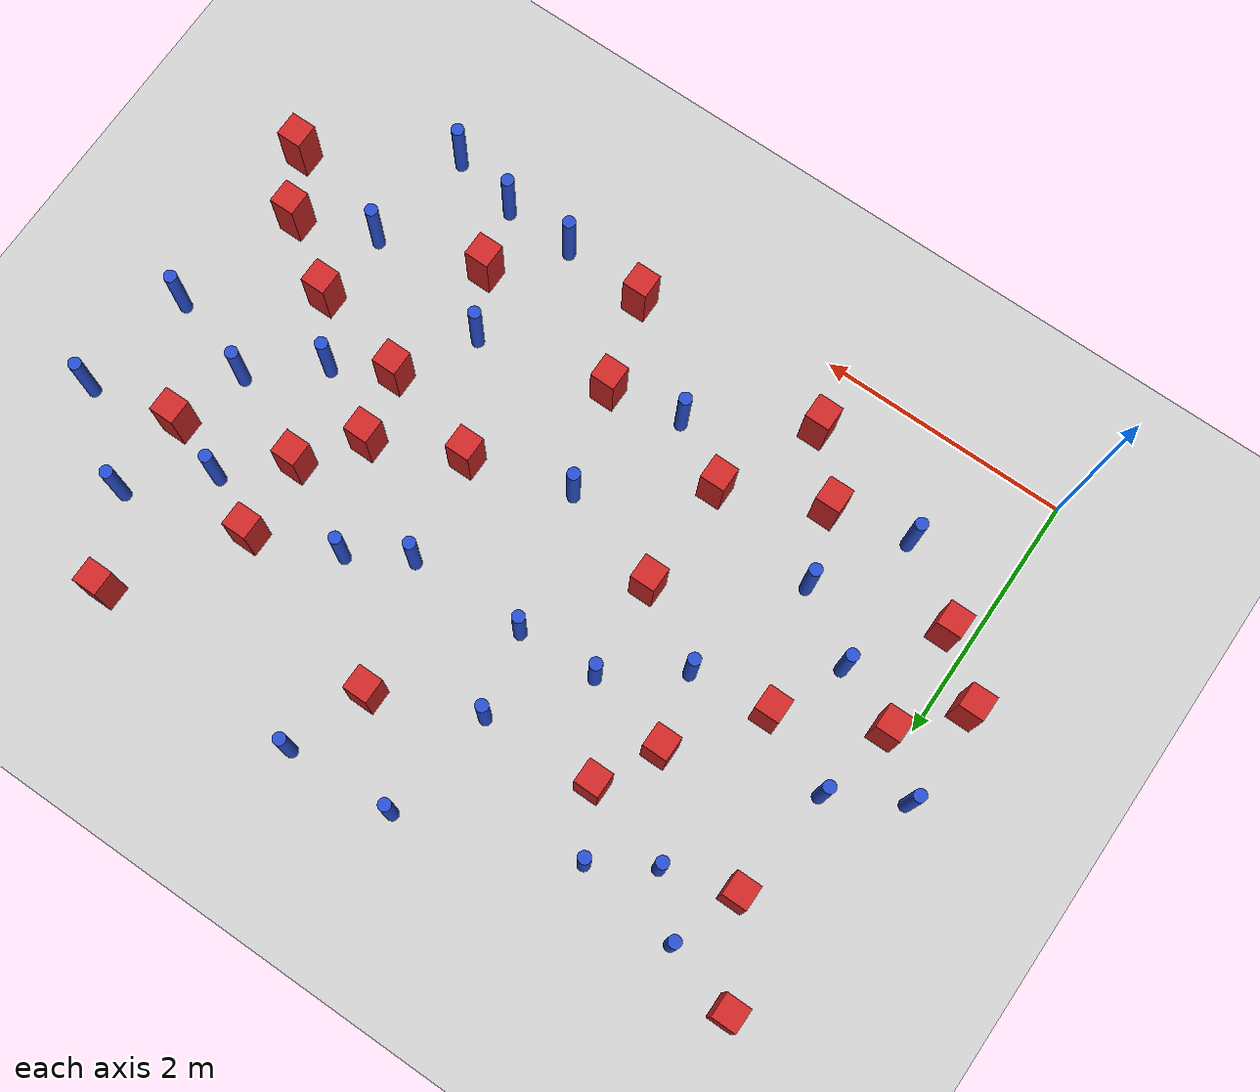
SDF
<sdf version="1.6">
 <world name="default">
  <model name="ground_plane">
   <static>1</static>
   <link name="link">
    <collision name="collision">
     <geometry><plane><normal>0 0 1</normal><size>100 100</size></plane></geometry>
     <surface><friction><ode><mu>100</mu><mu2>50</mu2></ode></friction></surface>
    </collision>
    <visual name="visual">
     <cast_shadows>0</cast_shadows>
     <geometry><plane><normal>0 0 1</normal><size>100 100</size></plane></geometry>
     <material>
      <ambient>1.0 1.0 1.0 1.0</ambient>
      <diffuse>0.8 0.8 0.8 1.0</diffuse>
      <specular>0.01 0.01 0.01 1.000000</specular>
     </material>
    </visual>
   </link>
  </model>
  <model name="pole_obstacle5">
   <static>true</static>
   <pose>0.301049879293 2.78130600048 -3.09024884793e-07 -7.19054271912e-07 -2.11315075129e-07 -1.93935509263e-07</pose>
   <link name="link">
    <pose>0 0 0.3 0 -0 0</pose>
    <inertial>
     <mass>1</mass>
     <inertia><ixx>0.145833</ixx><ixy>0</ixy><ixz>0</ixz><iyy>0.145833</iyy><iyz>0</iyz><izz>0.125</izz></inertia>
    </inertial>
    <collision name="collision">
     <geometry><cylinder><radius>0.05</radius><length>.6</length></cylinder></geometry>
    </collision>
    <visual name="visual">
     <geometry><cylinder><radius>0.05</radius><length>.6</length></cylinder></geometry>
     <material>
      <script><name>Gazebo/Blue</name><uri>file://media/materials/scripts/gazebo.material</uri></script>
     </material>
    </visual>
   </link>
  </model>
  <model name="square_post_obstacle5">
   <static>true</static>
   <pose>3.23649416431 1.14456363567 -4.36207812815e-07 3.75137919937e-06 9.77721102514e-07 2.47381364184e-05</pose>
   <link name="link">
    <pose>0 0 0.25 0 -0 0</pose>
    <inertial>
     <mass>100</mass>
     <inertia>
      <ixx>0.166667</ixx>
      <ixy>0</ixy>
      <ixz>0</ixz>
      <iyy>0.166667</iyy>
      <iyz>0</iyz>
      <izz>0.166667</izz>
     </inertia>
    </inertial>
    <collision name="collision"><geometry><box><size>.2 .2 .5</size></box></geometry></collision>
    <visual name="visual">
     <geometry><box><size>.2 .2 .5</size></box></geometry>
     <material>
      <script><name>Gazebo/Red</name><uri>file://media/materials/scripts/gazebo.material</uri></script>
     </material>
    </visual>
   </link>
  </model>
  <model name="pole_obstacle11">
   <static>true</static>
   <pose>5.72534623806 3.8320057346 -3.09024884793e-07 -7.19054271912e-07 -2.11315075144e-07 -1.93935509269e-07</pose>
   <link name="link">
    <pose>0 0 0.3 0 -0 0</pose>
    <inertial>
     <mass>1</mass>
     <inertia><ixx>0.145833</ixx><ixy>0</ixy><ixz>0</ixz><iyy>0.145833</iyy><iyz>0</iyz><izz>0.125</izz></inertia>
    </inertial>
    <collision name="collision">
     <geometry><cylinder><radius>0.05</radius><length>.6</length></cylinder></geometry>
    </collision>
    <visual name="visual">
     <geometry><cylinder><radius>0.05</radius><length>.6</length></cylinder></geometry>
     <material>
      <script><name>Gazebo/Blue</name><uri>file://media/materials/scripts/gazebo.material</uri></script>
     </material>
    </visual>
   </link>
  </model>
  <model name="square_post_obstacle9">
   <static>true</static>
   <pose>0.162851967666 2.13159668785 -4.36207812815e-07 3.75137919937e-06 9.77721102514e-07 2.47381364184e-05</pose>
   <link name="link">
    <pose>0 0 0.25 0 -0 0</pose>
    <inertial>
     <mass>100</mass>
     <inertia>
      <ixx>0.166667</ixx>
      <ixy>0</ixy>
      <ixz>0</ixz>
      <iyy>0.166667</iyy>
      <iyz>0</iyz>
      <izz>0.166667</izz>
     </inertia>
    </inertial>
    <collision name="collision"><geometry><box><size>.2 .2 .5</size></box></geometry></collision>
    <visual name="visual">
     <geometry><box><size>.2 .2 .5</size></box></geometry>
     <material>
      <script><name>Gazebo/Red</name><uri>file://media/materials/scripts/gazebo.material</uri></script>
     </material>
    </visual>
   </link>
  </model>
  <model name="square_post_obstacle11">
   <static>true</static>
   <pose>0.403565331096 3.68767833755 -4.36207812815e-07 3.75137919937e-06 9.77721102514e-07 2.47381364184e-05</pose>
   <link name="link">
    <pose>0 0 0.25 0 -0 0</pose>
    <inertial>
     <mass>100</mass>
     <inertia>
      <ixx>0.166667</ixx>
      <ixy>0</ixy>
      <ixz>0</ixz>
      <iyy>0.166667</iyy>
      <iyz>0</iyz>
      <izz>0.166667</izz>
     </inertia>
    </inertial>
    <collision name="collision"><geometry><box><size>.2 .2 .5</size></box></geometry></collision>
    <visual name="visual">
     <geometry><box><size>.2 .2 .5</size></box></geometry>
     <material>
      <script><name>Gazebo/Red</name><uri>file://media/materials/scripts/gazebo.material</uri></script>
     </material>
    </visual>
   </link>
  </model>
  <model name="pole_obstacle14">
   <static>true</static>
   <pose>6.26236813812 2.39795763185 -3.09024884793e-07 -7.19054271912e-07 -2.11315075144e-07 -1.93935509269e-07</pose>
   <link name="link">
    <pose>0 0 0.3 0 -0 0</pose>
    <inertial>
     <mass>1</mass>
     <inertia><ixx>0.145833</ixx><ixy>0</ixy><ixz>0</ixz><iyy>0.145833</iyy><iyz>0</iyz><izz>0.125</izz></inertia>
    </inertial>
    <collision name="collision">
     <geometry><cylinder><radius>0.05</radius><length>.6</length></cylinder></geometry>
    </collision>
    <visual name="visual">
     <geometry><cylinder><radius>0.05</radius><length>.6</length></cylinder></geometry>
     <material>
      <script><name>Gazebo/Blue</name><uri>file://media/materials/scripts/gazebo.material</uri></script>
     </material>
    </visual>
   </link>
  </model>
  <model name="square_post_obstacle14">
   <static>true</static>
   <pose>4.79167784545 2.927379257 -4.36207812815e-07 3.75137919937e-06 9.77721102514e-07 2.47381364184e-05</pose>
   <link name="link">
    <pose>0 0 0.25 0 -0 0</pose>
    <inertial>
     <mass>100</mass>
     <inertia>
      <ixx>0.166667</ixx>
      <ixy>0</ixy>
      <ixz>0</ixz>
      <iyy>0.166667</iyy>
      <iyz>0</iyz>
      <izz>0.166667</izz>
     </inertia>
    </inertial>
    <collision name="collision"><geometry><box><size>.2 .2 .5</size></box></geometry></collision>
    <visual name="visual">
     <geometry><box><size>.2 .2 .5</size></box></geometry>
     <material>
      <script><name>Gazebo/Red</name><uri>file://media/materials/scripts/gazebo.material</uri></script>
     </material>
    </visual>
   </link>
  </model>
  <model name="square_post_obstacle16">
   <static>true</static>
   <pose>-0.230969809656 1.67679450493 -4.36207812815e-07 3.75137919937e-06 9.77721102514e-07 2.47381364184e-05</pose>
   <link name="link">
    <pose>0 0 0.25 0 -0 0</pose>
    <inertial>
     <mass>100</mass>
     <inertia>
      <ixx>0.166667</ixx>
      <ixy>0</ixy>
      <ixz>0</ixz>
      <iyy>0.166667</iyy>
      <iyz>0</iyz>
      <izz>0.166667</izz>
     </inertia>
    </inertial>
    <collision name="collision"><geometry><box><size>.2 .2 .5</size></box></geometry></collision>
    <visual name="visual">
     <geometry><box><size>.2 .2 .5</size></box></geometry>
     <material>
      <script><name>Gazebo/Red</name><uri>file://media/materials/scripts/gazebo.material</uri></script>
     </material>
    </visual>
   </link>
  </model>
  <model name="square_post_obstacle17">
   <static>true</static>
   <pose>4.75082354821 3.5558905162 -4.36207812815e-07 3.75137919937e-06 9.77721102514e-07 2.47381364184e-05</pose>
   <link name="link">
    <pose>0 0 0.25 0 -0 0</pose>
    <inertial>
     <mass>100</mass>
     <inertia>
      <ixx>0.166667</ixx>
      <ixy>0</ixy>
      <ixz>0</ixz>
      <iyy>0.166667</iyy>
      <iyz>0</iyz>
      <izz>0.166667</izz>
     </inertia>
    </inertial>
    <collision name="collision"><geometry><box><size>.2 .2 .5</size></box></geometry></collision>
    <visual name="visual">
     <geometry><box><size>.2 .2 .5</size></box></geometry>
     <material>
      <script><name>Gazebo/Red</name><uri>file://media/materials/scripts/gazebo.material</uri></script>
     </material>
    </visual>
   </link>
  </model>
  <model name="pole_obstacle24">
   <static>true</static>
   <pose>2.56532698916 3.67538079114 -3.09024884793e-07 -7.19054271912e-07 -2.11315075144e-07 -1.93935509271e-07</pose>
   <link name="link">
    <pose>0 0 0.3 0 -0 0</pose>
    <inertial>
     <mass>1</mass>
     <inertia><ixx>0.145833</ixx><ixy>0</ixy><ixz>0</ixz><iyy>0.145833</iyy><iyz>0</iyz><izz>0.125</izz></inertia>
    </inertial>
    <collision name="collision">
     <geometry><cylinder><radius>0.05</radius><length>.6</length></cylinder></geometry>
    </collision>
    <visual name="visual">
     <geometry><cylinder><radius>0.05</radius><length>.6</length></cylinder></geometry>
     <material>
      <script><name>Gazebo/Blue</name><uri>file://media/materials/scripts/gazebo.material</uri></script>
     </material>
    </visual>
   </link>
  </model>
  <model name="pole_obstacle27">
   <static>true</static>
   <pose>0.664548261349 1.922897534 -3.09024884793e-07 -7.19054271912e-07 -2.11315075135e-07 -1.93935509266e-07</pose>
   <link name="link">
    <pose>0 0 0.3 0 -0 0</pose>
    <inertial>
     <mass>1</mass>
     <inertia><ixx>0.145833</ixx><ixy>0</ixy><ixz>0</ixz><iyy>0.145833</iyy><iyz>0</iyz><izz>0.125</izz></inertia>
    </inertial>
    <collision name="collision">
     <geometry><cylinder><radius>0.05</radius><length>.6</length></cylinder></geometry>
    </collision>
    <visual name="visual">
     <geometry><cylinder><radius>0.05</radius><length>.6</length></cylinder></geometry>
     <material>
      <script><name>Gazebo/Blue</name><uri>file://media/materials/scripts/gazebo.material</uri></script>
     </material>
    </visual>
   </link>
  </model>
  <model name="square_post_obstacle30">
   <static>true</static>
   <pose>6.25265639507 0.907791862315 -4.36207812815e-07 3.75137919937e-06 9.77721102514e-07 2.47381364184e-05</pose>
   <link name="link">
    <pose>0 0 0.25 0 -0 0</pose>
    <inertial>
     <mass>100</mass>
     <inertia>
      <ixx>0.166667</ixx>
      <ixy>0</ixy>
      <ixz>0</ixz>
      <iyy>0.166667</iyy>
      <iyz>0</iyz>
      <izz>0.166667</izz>
     </inertia>
    </inertial>
    <collision name="collision"><geometry><box><size>.2 .2 .5</size></box></geometry></collision>
    <visual name="visual">
     <geometry><box><size>.2 .2 .5</size></box></geometry>
     <material>
      <script><name>Gazebo/Red</name><uri>file://media/materials/scripts/gazebo.material</uri></script>
     </material>
    </visual>
   </link>
  </model>
  <model name="pole_obstacle39">
   <static>true</static>
   <pose>2.71931551612 3.02243655835 -3.09024884793e-07 -7.19054271912e-07 -2.11315075144e-07 -1.93935509271e-07</pose>
   <link name="link">
    <pose>0 0 0.3 0 -0 0</pose>
    <inertial>
     <mass>1</mass>
     <inertia><ixx>0.145833</ixx><ixy>0</ixy><ixz>0</ixz><iyy>0.145833</iyy><iyz>0</iyz><izz>0.125</izz></inertia>
    </inertial>
    <collision name="collision">
     <geometry><cylinder><radius>0.05</radius><length>.6</length></cylinder></geometry>
    </collision>
    <visual name="visual">
     <geometry><cylinder><radius>0.05</radius><length>.6</length></cylinder></geometry>
     <material>
      <script><name>Gazebo/Blue</name><uri>file://media/materials/scripts/gazebo.material</uri></script>
     </material>
    </visual>
   </link>
  </model>
  <model name="pole_obstacle42">
   <static>true</static>
   <pose>0.948194345929 3.84978508589 -3.09024884793e-07 -7.19054271912e-07 -2.11315075129e-07 -1.93935509263e-07</pose>
   <link name="link">
    <pose>0 0 0.3 0 -0 0</pose>
    <inertial>
     <mass>1</mass>
     <inertia><ixx>0.145833</ixx><ixy>0</ixy><ixz>0</ixz><iyy>0.145833</iyy><iyz>0</iyz><izz>0.125</izz></inertia>
    </inertial>
    <collision name="collision">
     <geometry><cylinder><radius>0.05</radius><length>.6</length></cylinder></geometry>
    </collision>
    <visual name="visual">
     <geometry><cylinder><radius>0.05</radius><length>.6</length></cylinder></geometry>
     <material>
      <script><name>Gazebo/Blue</name><uri>file://media/materials/scripts/gazebo.material</uri></script>
     </material>
    </visual>
   </link>
  </model>
  <model name="pole_obstacle43">
   <static>true</static>
   <pose>5.22394746204 0.251731931537 -3.09024884793e-07 -7.19054271912e-07 -2.11315075135e-07 -1.93935509265e-07</pose>
   <link name="link">
    <pose>0 0 0.3 0 -0 0</pose>
    <inertial>
     <mass>1</mass>
     <inertia><ixx>0.145833</ixx><ixy>0</ixy><ixz>0</ixz><iyy>0.145833</iyy><iyz>0</iyz><izz>0.125</izz></inertia>
    </inertial>
    <collision name="collision">
     <geometry><cylinder><radius>0.05</radius><length>.6</length></cylinder></geometry>
    </collision>
    <visual name="visual">
     <geometry><cylinder><radius>0.05</radius><length>.6</length></cylinder></geometry>
     <material>
      <script><name>Gazebo/Blue</name><uri>file://media/materials/scripts/gazebo.material</uri></script>
     </material>
    </visual>
   </link>
  </model>
  <model name="pole_obstacle44">
   <static>true</static>
   <pose>6.41487378239 3.32239646882 -3.09024884793e-07 -7.19054271912e-07 -2.11315075144e-07 -1.93935509269e-07</pose>
   <link name="link">
    <pose>0 0 0.3 0 -0 0</pose>
    <inertial>
     <mass>1</mass>
     <inertia><ixx>0.145833</ixx><ixy>0</ixy><ixz>0</ixz><iyy>0.145833</iyy><iyz>0</iyz><izz>0.125</izz></inertia>
    </inertial>
    <collision name="collision">
     <geometry><cylinder><radius>0.05</radius><length>.6</length></cylinder></geometry>
    </collision>
    <visual name="visual">
     <geometry><cylinder><radius>0.05</radius><length>.6</length></cylinder></geometry>
     <material>
      <script><name>Gazebo/Blue</name><uri>file://media/materials/scripts/gazebo.material</uri></script>
     </material>
    </visual>
   </link>
  </model>
  <model name="square_post_obstacle45">
   <static>true</static>
   <pose>3.44521033225 0.42264570161 -4.36207812815e-07 3.75137919937e-06 9.77721102514e-07 2.47381364184e-05</pose>
   <link name="link">
    <pose>0 0 0.25 0 -0 0</pose>
    <inertial>
     <mass>100</mass>
     <inertia>
      <ixx>0.166667</ixx>
      <ixy>0</ixy>
      <ixz>0</ixz>
      <iyy>0.166667</iyy>
      <iyz>0</iyz>
      <izz>0.166667</izz>
     </inertia>
    </inertial>
    <collision name="collision"><geometry><box><size>.2 .2 .5</size></box></geometry></collision>
    <visual name="visual">
     <geometry><box><size>.2 .2 .5</size></box></geometry>
     <material>
      <script><name>Gazebo/Red</name><uri>file://media/materials/scripts/gazebo.material</uri></script>
     </material>
    </visual>
   </link>
  </model>
  <model name="square_post_obstacle49">
   <static>true</static>
   <pose>5.70007666373 3.17042374362 -4.36207812815e-07 3.75137919937e-06 9.77721102514e-07 2.47381364184e-05</pose>
   <link name="link">
    <pose>0 0 0.25 0 -0 0</pose>
    <inertial>
     <mass>100</mass>
     <inertia>
      <ixx>0.166667</ixx>
      <ixy>0</ixy>
      <ixz>0</ixz>
      <iyy>0.166667</iyy>
      <iyz>0</iyz>
      <izz>0.166667</izz>
     </inertia>
    </inertial>
    <collision name="collision"><geometry><box><size>.2 .2 .5</size></box></geometry></collision>
    <visual name="visual">
     <geometry><box><size>.2 .2 .5</size></box></geometry>
     <material>
      <script><name>Gazebo/Red</name><uri>file://media/materials/scripts/gazebo.material</uri></script>
     </material>
    </visual>
   </link>
  </model>
  <model name="pole_obstacle65">
   <static>true</static>
   <pose>3.56930839278 4.65306455116 -3.09024884793e-07 -7.19054271912e-07 -2.11315075134e-07 -1.93935509266e-07</pose>
   <link name="link">
    <pose>0 0 0.3 0 -0 0</pose>
    <inertial>
     <mass>1</mass>
     <inertia><ixx>0.145833</ixx><ixy>0</ixy><ixz>0</ixz><iyy>0.145833</iyy><iyz>0</iyz><izz>0.125</izz></inertia>
    </inertial>
    <collision name="collision">
     <geometry><cylinder><radius>0.05</radius><length>.6</length></cylinder></geometry>
    </collision>
    <visual name="visual">
     <geometry><cylinder><radius>0.05</radius><length>.6</length></cylinder></geometry>
     <material>
      <script><name>Gazebo/Blue</name><uri>file://media/materials/scripts/gazebo.material</uri></script>
     </material>
    </visual>
   </link>
  </model>
  <model name="pole_obstacle70">
   <static>true</static>
   <pose>0.588663231134 4.23512099485 -3.09024884793e-07 -7.19054271912e-07 -2.11315075129e-07 -1.93935509261e-07</pose>
   <link name="link">
    <pose>0 0 0.3 0 -0 0</pose>
    <inertial>
     <mass>1</mass>
     <inertia><ixx>0.145833</ixx><ixy>0</ixy><ixz>0</ixz><iyy>0.145833</iyy><iyz>0</iyz><izz>0.125</izz></inertia>
    </inertial>
    <collision name="collision">
     <geometry><cylinder><radius>0.05</radius><length>.6</length></cylinder></geometry>
    </collision>
    <visual name="visual">
     <geometry><cylinder><radius>0.05</radius><length>.6</length></cylinder></geometry>
     <material>
      <script><name>Gazebo/Blue</name><uri>file://media/materials/scripts/gazebo.material</uri></script>
     </material>
    </visual>
   </link>
  </model>
  <model name="pole_obstacle74">
   <static>true</static>
   <pose>4.27987267948 1.36129176098 -3.09024884793e-07 -7.19054271912e-07 -2.11315075124e-07 -1.93935509261e-07</pose>
   <link name="link">
    <pose>0 0 0.3 0 -0 0</pose>
    <inertial>
     <mass>1</mass>
     <inertia><ixx>0.145833</ixx><ixy>0</ixy><ixz>0</ixz><iyy>0.145833</iyy><iyz>0</iyz><izz>0.125</izz></inertia>
    </inertial>
    <collision name="collision">
     <geometry><cylinder><radius>0.05</radius><length>.6</length></cylinder></geometry>
    </collision>
    <visual name="visual">
     <geometry><cylinder><radius>0.05</radius><length>.6</length></cylinder></geometry>
     <material>
      <script><name>Gazebo/Blue</name><uri>file://media/materials/scripts/gazebo.material</uri></script>
     </material>
    </visual>
   </link>
  </model>
  <model name="pole_obstacle75">
   <static>true</static>
   <pose>2.7135150448 4.6043763446 -3.09024884793e-07 -7.19054271912e-07 -2.11315075134e-07 -1.93935509266e-07</pose>
   <link name="link">
    <pose>0 0 0.3 0 -0 0</pose>
    <inertial>
     <mass>1</mass>
     <inertia><ixx>0.145833</ixx><ixy>0</ixy><ixz>0</ixz><iyy>0.145833</iyy><iyz>0</iyz><izz>0.125</izz></inertia>
    </inertial>
    <collision name="collision">
     <geometry><cylinder><radius>0.05</radius><length>.6</length></cylinder></geometry>
    </collision>
    <visual name="visual">
     <geometry><cylinder><radius>0.05</radius><length>.6</length></cylinder></geometry>
     <material>
      <script><name>Gazebo/Blue</name><uri>file://media/materials/scripts/gazebo.material</uri></script>
     </material>
    </visual>
   </link>
  </model>
  <model name="square_post_obstacle65">
   <static>true</static>
   <pose>5.40284690364 1.74773568525 -4.36207812815e-07 3.75137919937e-06 9.77721102514e-07 2.47381364184e-05</pose>
   <link name="link">
    <pose>0 0 0.25 0 -0 0</pose>
    <inertial>
     <mass>100</mass>
     <inertia>
      <ixx>0.166667</ixx>
      <ixy>0</ixy>
      <ixz>0</ixz>
      <iyy>0.166667</iyy>
      <iyz>0</iyz>
      <izz>0.166667</izz>
     </inertia>
    </inertial>
    <collision name="collision"><geometry><box><size>.2 .2 .5</size></box></geometry></collision>
    <visual name="visual">
     <geometry><box><size>.2 .2 .5</size></box></geometry>
     <material>
      <script><name>Gazebo/Red</name><uri>file://media/materials/scripts/gazebo.material</uri></script>
     </material>
    </visual>
   </link>
  </model>
  <model name="square_post_obstacle70">
   <static>true</static>
   <pose>1.79124794418 0.515727597055 -4.36207812815e-07 3.75137919937e-06 9.77721102514e-07 2.47381364184e-05</pose>
   <link name="link">
    <pose>0 0 0.25 0 -0 0</pose>
    <inertial>
     <mass>100</mass>
     <inertia>
      <ixx>0.166667</ixx>
      <ixy>0</ixy>
      <ixz>0</ixz>
      <iyy>0.166667</iyy>
      <iyz>0</iyz>
      <izz>0.166667</izz>
     </inertia>
    </inertial>
    <collision name="collision"><geometry><box><size>.2 .2 .5</size></box></geometry></collision>
    <visual name="visual">
     <geometry><box><size>.2 .2 .5</size></box></geometry>
     <material>
      <script><name>Gazebo/Red</name><uri>file://media/materials/scripts/gazebo.material</uri></script>
     </material>
    </visual>
   </link>
  </model>
  <model name="pole_obstacle82">
   <static>true</static>
   <pose>3.6535176663 3.02724903965 -3.09024884793e-07 -7.19054271912e-07 -2.11315075144e-07 -1.93935509271e-07</pose>
   <link name="link">
    <pose>0 0 0.3 0 -0 0</pose>
    <inertial>
     <mass>1</mass>
     <inertia><ixx>0.145833</ixx><ixy>0</ixy><ixz>0</ixz><iyy>0.145833</iyy><iyz>0</iyz><izz>0.125</izz></inertia>
    </inertial>
    <collision name="collision">
     <geometry><cylinder><radius>0.05</radius><length>.6</length></cylinder></geometry>
    </collision>
    <visual name="visual">
     <geometry><cylinder><radius>0.05</radius><length>.6</length></cylinder></geometry>
     <material>
      <script><name>Gazebo/Blue</name><uri>file://media/materials/scripts/gazebo.material</uri></script>
     </material>
    </visual>
   </link>
  </model>
  <model name="pole_obstacle84">
   <static>true</static>
   <pose>2.0872509653 2.98819125793 -3.09024884793e-07 -7.19054271912e-07 -2.11315075144e-07 -1.93935509271e-07</pose>
   <link name="link">
    <pose>0 0 0.3 0 -0 0</pose>
    <inertial>
     <mass>1</mass>
     <inertia><ixx>0.145833</ixx><ixy>0</ixy><ixz>0</ixz><iyy>0.145833</iyy><iyz>0</iyz><izz>0.125</izz></inertia>
    </inertial>
    <collision name="collision">
     <geometry><cylinder><radius>0.05</radius><length>.6</length></cylinder></geometry>
    </collision>
    <visual name="visual">
     <geometry><cylinder><radius>0.05</radius><length>.6</length></cylinder></geometry>
     <material>
      <script><name>Gazebo/Blue</name><uri>file://media/materials/scripts/gazebo.material</uri></script>
     </material>
    </visual>
   </link>
  </model>
  <model name="pole_obstacle86">
   <static>true</static>
   <pose>0.770824286958 0.856342860047 -3.09024884793e-07 -7.19054271912e-07 -2.11315075137e-07 -1.93935509266e-07</pose>
   <link name="link">
    <pose>0 0 0.3 0 -0 0</pose>
    <inertial>
     <mass>1</mass>
     <inertia><ixx>0.145833</ixx><ixy>0</ixy><ixz>0</ixz><iyy>0.145833</iyy><iyz>0</iyz><izz>0.125</izz></inertia>
    </inertial>
    <collision name="collision">
     <geometry><cylinder><radius>0.05</radius><length>.6</length></cylinder></geometry>
    </collision>
    <visual name="visual">
     <geometry><cylinder><radius>0.05</radius><length>.6</length></cylinder></geometry>
     <material>
      <script><name>Gazebo/Blue</name><uri>file://media/materials/scripts/gazebo.material</uri></script>
     </material>
    </visual>
   </link>
  </model>
  <model name="square_post_obstacle77">
   <static>true</static>
   <pose>1.41287936494 3.15733594478 -4.36207812815e-07 3.75137919937e-06 9.77721102514e-07 2.47381364184e-05</pose>
   <link name="link">
    <pose>0 0 0.25 0 -0 0</pose>
    <inertial>
     <mass>100</mass>
     <inertia>
      <ixx>0.166667</ixx>
      <ixy>0</ixy>
      <ixz>0</ixz>
      <iyy>0.166667</iyy>
      <iyz>0</iyz>
      <izz>0.166667</izz>
     </inertia>
    </inertial>
    <collision name="collision"><geometry><box><size>.2 .2 .5</size></box></geometry></collision>
    <visual name="visual">
     <geometry><box><size>.2 .2 .5</size></box></geometry>
     <material>
      <script><name>Gazebo/Red</name><uri>file://media/materials/scripts/gazebo.material</uri></script>
     </material>
    </visual>
   </link>
  </model>
  <model name="pole_obstacle89">
   <static>true</static>
   <pose>1.54640722618 2.57179694085 -3.09024884793e-07 -7.19054271912e-07 -2.11315075132e-07 -1.93935509263e-07</pose>
   <link name="link">
    <pose>0 0 0.3 0 -0 0</pose>
    <inertial>
     <mass>1</mass>
     <inertia><ixx>0.145833</ixx><ixy>0</ixy><ixz>0</ixz><iyy>0.145833</iyy><iyz>0</iyz><izz>0.125</izz></inertia>
    </inertial>
    <collision name="collision">
     <geometry><cylinder><radius>0.05</radius><length>.6</length></cylinder></geometry>
    </collision>
    <visual name="visual">
     <geometry><cylinder><radius>0.05</radius><length>.6</length></cylinder></geometry>
     <material>
      <script><name>Gazebo/Blue</name><uri>file://media/materials/scripts/gazebo.material</uri></script>
     </material>
    </visual>
   </link>
  </model>
  <model name="square_post_obstacle91">
   <static>true</static>
   <pose>2.15750185292 1.32664599746 -4.36207812815e-07 3.75137919937e-06 9.77721102514e-07 2.47381364184e-05</pose>
   <link name="link">
    <pose>0 0 0.25 0 -0 0</pose>
    <inertial>
     <mass>100</mass>
     <inertia>
      <ixx>0.166667</ixx>
      <ixy>0</ixy>
      <ixz>0</ixz>
      <iyy>0.166667</iyy>
      <iyz>0</iyz>
      <izz>0.166667</izz>
     </inertia>
    </inertial>
    <collision name="collision"><geometry><box><size>.2 .2 .5</size></box></geometry></collision>
    <visual name="visual">
     <geometry><box><size>.2 .2 .5</size></box></geometry>
     <material>
      <script><name>Gazebo/Red</name><uri>file://media/materials/scripts/gazebo.material</uri></script>
     </material>
    </visual>
   </link>
  </model>
  <model name="square_post_obstacle105">
   <static>true</static>
   <pose>1.39358465227 0.991570367207 -4.36207812815e-07 3.75137919937e-06 9.77721102514e-07 2.47381364184e-05</pose>
   <link name="link">
    <pose>0 0 0.25 0 -0 0</pose>
    <inertial>
     <mass>100</mass>
     <inertia>
      <ixx>0.166667</ixx>
      <ixy>0</ixy>
      <ixz>0</ixz>
      <iyy>0.166667</iyy>
      <iyz>0</iyz>
      <izz>0.166667</izz>
     </inertia>
    </inertial>
    <collision name="collision"><geometry><box><size>.2 .2 .5</size></box></geometry></collision>
    <visual name="visual">
     <geometry><box><size>.2 .2 .5</size></box></geometry>
     <material>
      <script><name>Gazebo/Red</name><uri>file://media/materials/scripts/gazebo.material</uri></script>
     </material>
    </visual>
   </link>
  </model>
  <model name="pole_obstacle111">
   <static>true</static>
   <pose>4.68403377021 0.372710196498 -3.09024884793e-07 -7.19054271912e-07 -2.11315075138e-07 -1.93935509266e-07</pose>
   <link name="link">
    <pose>0 0 0.3 0 -0 0</pose>
    <inertial>
     <mass>1</mass>
     <inertia><ixx>0.145833</ixx><ixy>0</ixy><ixz>0</ixz><iyy>0.145833</iyy><iyz>0</iyz><izz>0.125</izz></inertia>
    </inertial>
    <collision name="collision">
     <geometry><cylinder><radius>0.05</radius><length>.6</length></cylinder></geometry>
    </collision>
    <visual name="visual">
     <geometry><cylinder><radius>0.05</radius><length>.6</length></cylinder></geometry>
     <material>
      <script><name>Gazebo/Blue</name><uri>file://media/materials/scripts/gazebo.material</uri></script>
     </material>
    </visual>
   </link>
  </model>
  <model name="pole_obstacle113">
   <static>true</static>
   <pose>1.20288371585 1.55975041372 -3.09024884793e-07 -7.19054271912e-07 -2.1131507513e-07 -1.93935509263e-07</pose>
   <link name="link">
    <pose>0 0 0.3 0 -0 0</pose>
    <inertial>
     <mass>1</mass>
     <inertia><ixx>0.145833</ixx><ixy>0</ixy><ixz>0</ixz><iyy>0.145833</iyy><iyz>0</iyz><izz>0.125</izz></inertia>
    </inertial>
    <collision name="collision">
     <geometry><cylinder><radius>0.05</radius><length>.6</length></cylinder></geometry>
    </collision>
    <visual name="visual">
     <geometry><cylinder><radius>0.05</radius><length>.6</length></cylinder></geometry>
     <material>
      <script><name>Gazebo/Blue</name><uri>file://media/materials/scripts/gazebo.material</uri></script>
     </material>
    </visual>
   </link>
  </model>
  <model name="square_post_obstacle128">
   <static>true</static>
   <pose>2.15494548405 2.21813873529 -4.36207812815e-07 3.75137919937e-06 9.77721102514e-07 2.47381364184e-05</pose>
   <link name="link">
    <pose>0 0 0.25 0 -0 0</pose>
    <inertial>
     <mass>100</mass>
     <inertia>
      <ixx>0.166667</ixx>
      <ixy>0</ixy>
      <ixz>0</ixz>
      <iyy>0.166667</iyy>
      <iyz>0</iyz>
      <izz>0.166667</izz>
     </inertia>
    </inertial>
    <collision name="collision"><geometry><box><size>.2 .2 .5</size></box></geometry></collision>
    <visual name="visual">
     <geometry><box><size>.2 .2 .5</size></box></geometry>
     <material>
      <script><name>Gazebo/Red</name><uri>file://media/materials/scripts/gazebo.material</uri></script>
     </material>
    </visual>
   </link>
  </model>
  <model name="pole_obstacle133">
   <static>true</static>
   <pose>2.65440927643 1.03440521422 -3.09024884848e-07 -7.19054271902e-07 -2.11315075202e-07 -1.93935509288e-07</pose>
   <link name="link">
    <pose>0 0 0.3 0 -0 0</pose>
    <inertial>
     <mass>1</mass>
     <inertia><ixx>0.145833</ixx><ixy>0</ixy><ixz>0</ixz><iyy>0.145833</iyy><iyz>0</iyz><izz>0.125</izz></inertia>
    </inertial>
    <collision name="collision">
     <geometry><cylinder><radius>0.05</radius><length>.6</length></cylinder></geometry>
    </collision>
    <visual name="visual">
     <geometry><cylinder><radius>0.05</radius><length>.6</length></cylinder></geometry>
     <material>
      <script><name>Gazebo/Blue</name><uri>file://media/materials/scripts/gazebo.material</uri></script>
     </material>
    </visual>
   </link>
  </model>
  <model name="square_post_obstacle134">
   <static>true</static>
   <pose>0.922543718017 2.49860263294 -4.36207812815e-07 3.75137919937e-06 9.77721102514e-07 2.47381364184e-05</pose>
   <link name="link">
    <pose>0 0 0.25 0 -0 0</pose>
    <inertial>
     <mass>100</mass>
     <inertia>
      <ixx>0.166667</ixx>
      <ixy>0</ixy>
      <ixz>0</ixz>
      <iyy>0.166667</iyy>
      <iyz>0</iyz>
      <izz>0.166667</izz>
     </inertia>
    </inertial>
    <collision name="collision"><geometry><box><size>.2 .2 .5</size></box></geometry></collision>
    <visual name="visual">
     <geometry><box><size>.2 .2 .5</size></box></geometry>
     <material>
      <script><name>Gazebo/Red</name><uri>file://media/materials/scripts/gazebo.material</uri></script>
     </material>
    </visual>
   </link>
  </model>
  <model name="pole_obstacle149">
   <static>true</static>
   <pose>4.10366275685 3.29356812591 -3.09024884793e-07 -7.19054271912e-07 -2.11315075144e-07 -1.93935509269e-07</pose>
   <link name="link">
    <pose>0 0 0.3 0 -0 0</pose>
    <inertial>
     <mass>1</mass>
     <inertia><ixx>0.145833</ixx><ixy>0</ixy><ixz>0</ixz><iyy>0.145833</iyy><iyz>0</iyz><izz>0.125</izz></inertia>
    </inertial>
    <collision name="collision">
     <geometry><cylinder><radius>0.05</radius><length>.6</length></cylinder></geometry>
    </collision>
    <visual name="visual">
     <geometry><cylinder><radius>0.05</radius><length>.6</length></cylinder></geometry>
     <material>
      <script><name>Gazebo/Blue</name><uri>file://media/materials/scripts/gazebo.material</uri></script>
     </material>
    </visual>
   </link>
  </model>
  <model name="pole_obstacle152">
   <static>true</static>
   <pose>1.39828747514 4.12256125792 -3.09024884793e-07 -7.19054271912e-07 -2.11315075134e-07 -1.93935509265e-07</pose>
   <link name="link">
    <pose>0 0 0.3 0 -0 0</pose>
    <inertial>
     <mass>1</mass>
     <inertia><ixx>0.145833</ixx><ixy>0</ixy><ixz>0</ixz><iyy>0.145833</iyy><iyz>0</iyz><izz>0.125</izz></inertia>
    </inertial>
    <collision name="collision">
     <geometry><cylinder><radius>0.05</radius><length>.6</length></cylinder></geometry>
    </collision>
    <visual name="visual">
     <geometry><cylinder><radius>0.05</radius><length>.6</length></cylinder></geometry>
     <material>
      <script><name>Gazebo/Blue</name><uri>file://media/materials/scripts/gazebo.material</uri></script>
     </material>
    </visual>
   </link>
  </model>
  <model name="square_post_obstacle151">
   <static>true</static>
   <pose>1.65902614251 3.63328688869 -4.36207812815e-07 3.75137919937e-06 9.77721102514e-07 2.47381364184e-05</pose>
   <link name="link">
    <pose>0 0 0.25 0 -0 0</pose>
    <inertial>
     <mass>100</mass>
     <inertia>
      <ixx>0.166667</ixx>
      <ixy>0</ixy>
      <ixz>0</ixz>
      <iyy>0.166667</iyy>
      <iyz>0</iyz>
      <izz>0.166667</izz>
     </inertia>
    </inertial>
    <collision name="collision"><geometry><box><size>.2 .2 .5</size></box></geometry></collision>
    <visual name="visual">
     <geometry><box><size>.2 .2 .5</size></box></geometry>
     <material>
      <script><name>Gazebo/Red</name><uri>file://media/materials/scripts/gazebo.material</uri></script>
     </material>
    </visual>
   </link>
  </model>
  <model name="pole_obstacle162">
   <static>true</static>
   <pose>2.9927507855 1.95170628809 -3.09024884793e-07 -7.19054271912e-07 -2.11315075139e-07 -1.93935509269e-07</pose>
   <link name="link">
    <pose>0 0 0.3 0 -0 0</pose>
    <inertial>
     <mass>1</mass>
     <inertia><ixx>0.145833</ixx><ixy>0</ixy><ixz>0</ixz><iyy>0.145833</iyy><iyz>0</iyz><izz>0.125</izz></inertia>
    </inertial>
    <collision name="collision">
     <geometry><cylinder><radius>0.05</radius><length>.6</length></cylinder></geometry>
    </collision>
    <visual name="visual">
     <geometry><cylinder><radius>0.05</radius><length>.6</length></cylinder></geometry>
     <material>
      <script><name>Gazebo/Blue</name><uri>file://media/materials/scripts/gazebo.material</uri></script>
     </material>
    </visual>
   </link>
  </model>
  <model name="square_post_obstacle154">
   <static>true</static>
   <pose>0.20304601892 1.26878498923 -4.36207812815e-07 3.75137919937e-06 9.77721102514e-07 2.47381364184e-05</pose>
   <link name="link">
    <pose>0 0 0.25 0 -0 0</pose>
    <inertial>
     <mass>100</mass>
     <inertia>
      <ixx>0.166667</ixx>
      <ixy>0</ixy>
      <ixz>0</ixz>
      <iyy>0.166667</iyy>
      <iyz>0</iyz>
      <izz>0.166667</izz>
     </inertia>
    </inertial>
    <collision name="collision"><geometry><box><size>.2 .2 .5</size></box></geometry></collision>
    <visual name="visual">
     <geometry><box><size>.2 .2 .5</size></box></geometry>
     <material>
      <script><name>Gazebo/Red</name><uri>file://media/materials/scripts/gazebo.material</uri></script>
     </material>
    </visual>
   </link>
  </model>
  <model name="square_post_obstacle155">
   <static>true</static>
   <pose>4.53672683968 0.892082473205 -4.36207812815e-07 3.75137919937e-06 9.77721102514e-07 2.47381364184e-05</pose>
   <link name="link">
    <pose>0 0 0.25 0 -0 0</pose>
    <inertial>
     <mass>100</mass>
     <inertia>
      <ixx>0.166667</ixx>
      <ixy>0</ixy>
      <ixz>0</ixz>
      <iyy>0.166667</iyy>
      <iyz>0</iyz>
      <izz>0.166667</izz>
     </inertia>
    </inertial>
    <collision name="collision"><geometry><box><size>.2 .2 .5</size></box></geometry></collision>
    <visual name="visual">
     <geometry><box><size>.2 .2 .5</size></box></geometry>
     <material>
      <script><name>Gazebo/Red</name><uri>file://media/materials/scripts/gazebo.material</uri></script>
     </material>
    </visual>
   </link>
  </model>
  <model name="square_post_obstacle167">
   <static>true</static>
   <pose>0.0174187767993 4.39871650317 -4.36207812815e-07 3.75137919937e-06 9.77721102514e-07 2.47381364184e-05</pose>
   <link name="link">
    <pose>0 0 0.25 0 -0 0</pose>
    <inertial>
     <mass>100</mass>
     <inertia>
      <ixx>0.166667</ixx>
      <ixy>0</ixy>
      <ixz>0</ixz>
      <iyy>0.166667</iyy>
      <iyz>0</iyz>
      <izz>0.166667</izz>
     </inertia>
    </inertial>
    <collision name="collision"><geometry><box><size>.2 .2 .5</size></box></geometry></collision>
    <visual name="visual">
     <geometry><box><size>.2 .2 .5</size></box></geometry>
     <material>
      <script><name>Gazebo/Red</name><uri>file://media/materials/scripts/gazebo.material</uri></script>
     </material>
    </visual>
   </link>
  </model>
  <model name="square_post_obstacle172">
   <static>true</static>
   <pose>3.78769137904 2.18300007059 -4.36207812815e-07 3.75137919937e-06 9.77721102514e-07 2.47381364184e-05</pose>
   <link name="link">
    <pose>0 0 0.25 0 -0 0</pose>
    <inertial>
     <mass>100</mass>
     <inertia>
      <ixx>0.166667</ixx>
      <ixy>0</ixy>
      <ixz>0</ixz>
      <iyy>0.166667</iyy>
      <iyz>0</iyz>
      <izz>0.166667</izz>
     </inertia>
    </inertial>
    <collision name="collision"><geometry><box><size>.2 .2 .5</size></box></geometry></collision>
    <visual name="visual">
     <geometry><box><size>.2 .2 .5</size></box></geometry>
     <material>
      <script><name>Gazebo/Red</name><uri>file://media/materials/scripts/gazebo.material</uri></script>
     </material>
    </visual>
   </link>
  </model>
  <model name="square_post_obstacle177">
   <static>true</static>
   <pose>5.9667525793 1.37366627389 -4.36207812815e-07 3.75137919937e-06 9.77721102514e-07 2.47381364184e-05</pose>
   <link name="link">
    <pose>0 0 0.25 0 -0 0</pose>
    <inertial>
     <mass>100</mass>
     <inertia>
      <ixx>0.166667</ixx>
      <ixy>0</ixy>
      <ixz>0</ixz>
      <iyy>0.166667</iyy>
      <iyz>0</iyz>
      <izz>0.166667</izz>
     </inertia>
    </inertial>
    <collision name="collision"><geometry><box><size>.2 .2 .5</size></box></geometry></collision>
    <visual name="visual">
     <geometry><box><size>.2 .2 .5</size></box></geometry>
     <material>
      <script><name>Gazebo/Red</name><uri>file://media/materials/scripts/gazebo.material</uri></script>
     </material>
    </visual>
   </link>
  </model>
  <model name="pole_obstacle180">
   <static>true</static>
   <pose>5.21830389652 3.33724576567 -3.09024884793e-07 -7.19054271912e-07 -2.11315075144e-07 -1.93935509269e-07</pose>
   <link name="link">
    <pose>0 0 0.3 0 -0 0</pose>
    <inertial>
     <mass>1</mass>
     <inertia><ixx>0.145833</ixx><ixy>0</ixy><ixz>0</ixz><iyy>0.145833</iyy><iyz>0</iyz><izz>0.125</izz></inertia>
    </inertial>
    <collision name="collision">
     <geometry><cylinder><radius>0.05</radius><length>.6</length></cylinder></geometry>
    </collision>
    <visual name="visual">
     <geometry><cylinder><radius>0.05</radius><length>.6</length></cylinder></geometry>
     <material>
      <script><name>Gazebo/Blue</name><uri>file://media/materials/scripts/gazebo.material</uri></script>
     </material>
    </visual>
   </link>
  </model>
  <model name="pole_obstacle181">
   <static>true</static>
   <pose>-0.236829777461 2.47936861475 -3.09024884848e-07 -7.19054271902e-07 -2.11315075205e-07 -1.93935509288e-07</pose>
   <link name="link">
    <pose>0 0 0.3 0 -0 0</pose>
    <inertial>
     <mass>1</mass>
     <inertia><ixx>0.145833</ixx><ixy>0</ixy><ixz>0</ixz><iyy>0.145833</iyy><iyz>0</iyz><izz>0.125</izz></inertia>
    </inertial>
    <collision name="collision">
     <geometry><cylinder><radius>0.05</radius><length>.6</length></cylinder></geometry>
    </collision>
    <visual name="visual">
     <geometry><cylinder><radius>0.05</radius><length>.6</length></cylinder></geometry>
     <material>
      <script><name>Gazebo/Blue</name><uri>file://media/materials/scripts/gazebo.material</uri></script>
     </material>
    </visual>
   </link>
  </model>
  <model name="square_post_obstacle188">
   <static>true</static>
   <pose>4.60436376641 1.95576604715 -4.36207812815e-07 3.75137919937e-06 9.77721102514e-07 2.47381364184e-05</pose>
   <link name="link">
    <pose>0 0 0.25 0 -0 0</pose>
    <inertial>
     <mass>100</mass>
     <inertia>
      <ixx>0.166667</ixx>
      <ixy>0</ixy>
      <ixz>0</ixz>
      <iyy>0.166667</iyy>
      <iyz>0</iyz>
      <izz>0.166667</izz>
     </inertia>
    </inertial>
    <collision name="collision"><geometry><box><size>.2 .2 .5</size></box></geometry></collision>
    <visual name="visual">
     <geometry><box><size>.2 .2 .5</size></box></geometry>
     <material>
      <script><name>Gazebo/Red</name><uri>file://media/materials/scripts/gazebo.material</uri></script>
     </material>
    </visual>
   </link>
  </model>
  <model name="square_post_obstacle192">
   <static>true</static>
   <pose>5.36739302925 4.48101671106 -4.36207812815e-07 3.75137919937e-06 9.77721102514e-07 2.47381364184e-05</pose>
   <link name="link">
    <pose>0 0 0.25 0 -0 0</pose>
    <inertial>
     <mass>100</mass>
     <inertia>
      <ixx>0.166667</ixx>
      <ixy>0</ixy>
      <ixz>0</ixz>
      <iyy>0.166667</iyy>
      <iyz>0</iyz>
      <izz>0.166667</izz>
     </inertia>
    </inertial>
    <collision name="collision"><geometry><box><size>.2 .2 .5</size></box></geometry></collision>
    <visual name="visual">
     <geometry><box><size>.2 .2 .5</size></box></geometry>
     <material>
      <script><name>Gazebo/Red</name><uri>file://media/materials/scripts/gazebo.material</uri></script>
     </material>
    </visual>
   </link>
  </model>
  <model name="pole_obstacle187">
   <static>true</static>
   <pose>5.05013764939 2.18515725198 -3.09024884793e-07 -7.19054271912e-07 -2.11315075144e-07 -1.93935509269e-07</pose>
   <link name="link">
    <pose>0 0 0.3 0 -0 0</pose>
    <inertial>
     <mass>1</mass>
     <inertia><ixx>0.145833</ixx><ixy>0</ixy><ixz>0</ixz><iyy>0.145833</iyy><iyz>0</iyz><izz>0.125</izz></inertia>
    </inertial>
    <collision name="collision">
     <geometry><cylinder><radius>0.05</radius><length>.6</length></cylinder></geometry>
    </collision>
    <visual name="visual">
     <geometry><cylinder><radius>0.05</radius><length>.6</length></cylinder></geometry>
     <material>
      <script><name>Gazebo/Blue</name><uri>file://media/materials/scripts/gazebo.material</uri></script>
     </material>
    </visual>
   </link>
  </model>
  <model name="pole_obstacle188">
   <static>true</static>
   <pose>5.53964716466 2.61130377032 -3.09024884793e-07 -7.19054271912e-07 -2.11315075144e-07 -1.93935509269e-07</pose>
   <link name="link">
    <pose>0 0 0.3 0 -0 0</pose>
    <inertial>
     <mass>1</mass>
     <inertia><ixx>0.145833</ixx><ixy>0</ixy><ixz>0</ixz><iyy>0.145833</iyy><iyz>0</iyz><izz>0.125</izz></inertia>
    </inertial>
    <collision name="collision">
     <geometry><cylinder><radius>0.05</radius><length>.6</length></cylinder></geometry>
    </collision>
    <visual name="visual">
     <geometry><cylinder><radius>0.05</radius><length>.6</length></cylinder></geometry>
     <material>
      <script><name>Gazebo/Blue</name><uri>file://media/materials/scripts/gazebo.material</uri></script>
     </material>
    </visual>
   </link>
  </model>
  <model name="pole_obstacle189">
   <static>true</static>
   <pose>5.3689899817 1.14051818739 -3.09024884793e-07 -7.19054271912e-07 -2.11315075124e-07 -1.93935509261e-07</pose>
   <link name="link">
    <pose>0 0 0.3 0 -0 0</pose>
    <inertial>
     <mass>1</mass>
     <inertia><ixx>0.145833</ixx><ixy>0</ixy><ixz>0</ixz><iyy>0.145833</iyy><iyz>0</iyz><izz>0.125</izz></inertia>
    </inertial>
    <collision name="collision">
     <geometry><cylinder><radius>0.05</radius><length>.6</length></cylinder></geometry>
    </collision>
    <visual name="visual">
     <geometry><cylinder><radius>0.05</radius><length>.6</length></cylinder></geometry>
     <material>
      <script><name>Gazebo/Blue</name><uri>file://media/materials/scripts/gazebo.material</uri></script>
     </material>
    </visual>
   </link>
  </model>
  <model name="square_post_obstacle209">
   <static>true</static>
   <pose>4.46744895505 2.49054503103 -4.36207812815e-07 3.75137919937e-06 9.77721102514e-07 2.47381364184e-05</pose>
   <link name="link">
    <pose>0 0 0.25 0 -0 0</pose>
    <inertial>
     <mass>100</mass>
     <inertia>
      <ixx>0.166667</ixx>
      <ixy>0</ixy>
      <ixz>0</ixz>
      <iyy>0.166667</iyy>
      <iyz>0</iyz>
      <izz>0.166667</izz>
     </inertia>
    </inertial>
    <collision name="collision"><geometry><box><size>.2 .2 .5</size></box></geometry></collision>
    <visual name="visual">
     <geometry><box><size>.2 .2 .5</size></box></geometry>
     <material>
      <script><name>Gazebo/Red</name><uri>file://media/materials/scripts/gazebo.material</uri></script>
     </material>
    </visual>
   </link>
  </model>
  <model name="square_post_obstacle210">
   <static>true</static>
   <pose>3.34748693431 4.01135156553 -4.36207812815e-07 3.75137919937e-06 9.77721102514e-07 2.47381364184e-05</pose>
   <link name="link">
    <pose>0 0 0.25 0 -0 0</pose>
    <inertial>
     <mass>100</mass>
     <inertia>
      <ixx>0.166667</ixx>
      <ixy>0</ixy>
      <ixz>0</ixz>
      <iyy>0.166667</iyy>
      <iyz>0</iyz>
      <izz>0.166667</izz>
     </inertia>
    </inertial>
    <collision name="collision"><geometry><box><size>.2 .2 .5</size></box></geometry></collision>
    <visual name="visual">
     <geometry><box><size>.2 .2 .5</size></box></geometry>
     <material>
      <script><name>Gazebo/Red</name><uri>file://media/materials/scripts/gazebo.material</uri></script>
     </material>
    </visual>
   </link>
  </model>
  <model name="pole_obstacle214">
   <static>true</static>
   <pose>4.11894000976 0.387614020783 -3.09024884793e-07 -7.19054271912e-07 -2.11315075138e-07 -1.93935509266e-07</pose>
   <link name="link">
    <pose>0 0 0.3 0 -0 0</pose>
    <inertial>
     <mass>1</mass>
     <inertia><ixx>0.145833</ixx><ixy>0</ixy><ixz>0</ixz><iyy>0.145833</iyy><iyz>0</iyz><izz>0.125</izz></inertia>
    </inertial>
    <collision name="collision">
     <geometry><cylinder><radius>0.05</radius><length>.6</length></cylinder></geometry>
    </collision>
    <visual name="visual">
     <geometry><cylinder><radius>0.05</radius><length>.6</length></cylinder></geometry>
     <material>
      <script><name>Gazebo/Blue</name><uri>file://media/materials/scripts/gazebo.material</uri></script>
     </material>
    </visual>
   </link>
  </model>
 </world>
</sdf>
